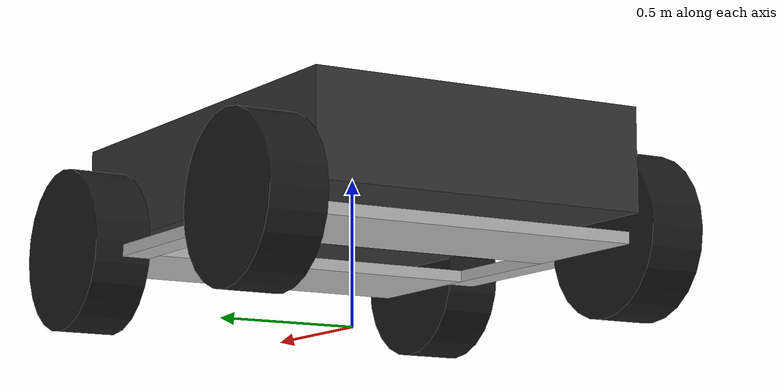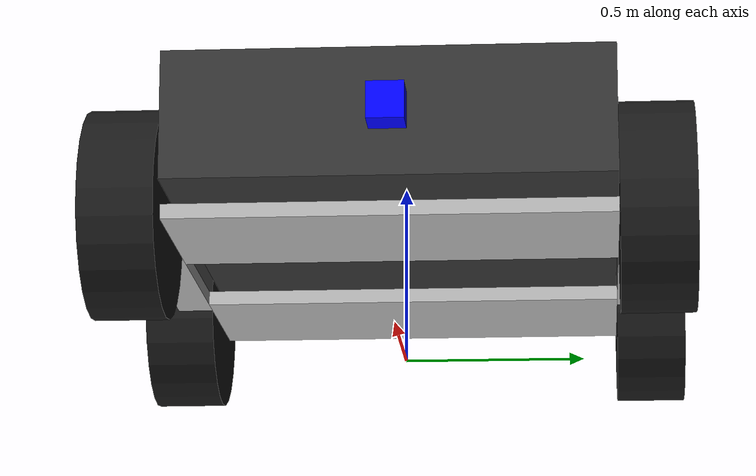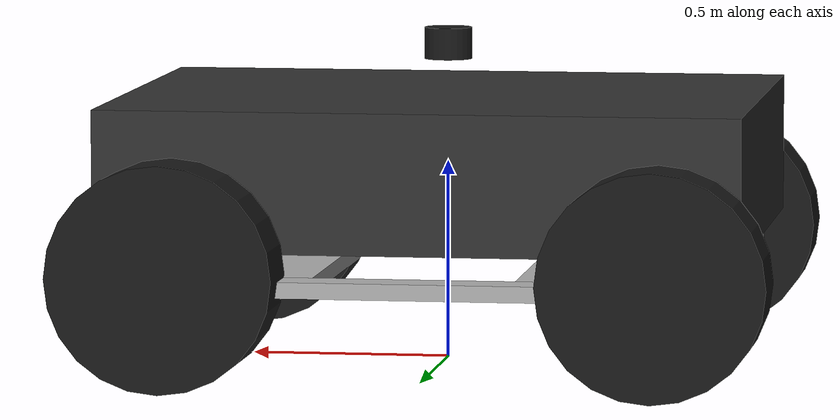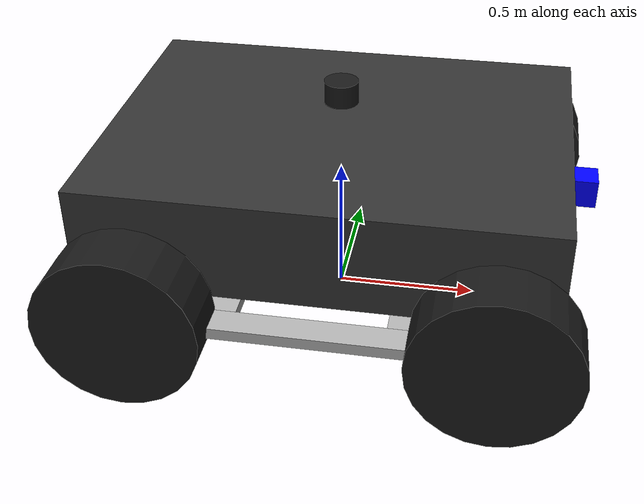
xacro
<?xml version="1.0" ?>
<robot name="bot" xmlns:xacro="http://ros.org/wiki/xacro">

  <xacro:include filename="bot_ros2_control.xacro" />

  <link name="base_footprint">
  </link>

  <joint name="base_joint" type="fixed">
    <parent link="base_footprint"/>
    <child link="base_link"/>
    <origin xyz="0.0 0.0 0.50" rpy="0.0 0.0 3.14159"/>
  </joint>

  <link name="base_link">
    <visual>
      <geometry>
        <box size="1.6 1.2 0.35"/>
      </geometry>
      <material name="gray">
        <color rgba="0.2 0.2 0.2 1" />
      </material>
    </visual>

    <collision>
      <geometry>
        <box size="1.6 1.2 0.35"/>
      </geometry>
    </collision>

    <inertial>
      <mass value="80"/>
      <inertia ixx="15.0" iyy="22.0" izz="35.0" ixy="0.0" ixz="0.0" iyz="0.0"/>
    </inertial>
  </link>

  <gazebo reference="base_link">
    <material>Gazebo/DarkGrey</material>
  </gazebo>

  <link name="wheel_front_right">
    <inertial>
      <mass value="8.0"/>
      <inertia ixx="0.18" iyy="0.18" izz="0.32" ixy="0.0" ixz="0.0" iyz="0.0"/>
    </inertial>

    <visual>
      <geometry>
        <cylinder radius="0.28" length="0.20"/>
      </geometry>
      <material name="black">
        <color rgba="0.1 0.1 0.1 1"/>
      </material>
    </visual>

    <collision>
      <geometry>
        <cylinder radius="0.28" length="0.20"/>
      </geometry>
    </collision>
  </link>

  <link name="wheel_front_left">
    <inertial>
      <mass value="8.0"/>
      <inertia ixx="0.18" iyy="0.18" izz="0.32" ixy="0.0" ixz="0.0" iyz="0.0"/>
    </inertial>

    <visual>
      <geometry>
        <cylinder radius="0.28" length="0.20"/>
      </geometry>
      <material name="black">
        <color rgba="0.1 0.1 0.1 1"/>
      </material>
    </visual>

    <collision>
      <geometry>
        <cylinder radius="0.28" length="0.20"/>
      </geometry>
    </collision>
  </link>

  <link name="wheel_back_right">
    <inertial>
      <mass value="8.0"/>
      <inertia ixx="0.18" iyy="0.18" izz="0.32" ixy="0.0" ixz="0.0" iyz="0.0"/>
    </inertial>

    <visual>
      <geometry>
        <cylinder radius="0.28" length="0.20"/>
      </geometry>
      <material name="black">
        <color rgba="0.1 0.1 0.1 1"/>
      </material>
    </visual>

    <collision>
      <geometry>
        <cylinder radius="0.28" length="0.20"/>
      </geometry>
    </collision>
  </link>

  <link name="wheel_back_left">
    <inertial>
      <mass value="8.0"/>
      <inertia ixx="0.18" iyy="0.18" izz="0.32" ixy="0.0" ixz="0.0" iyz="0.0"/>
    </inertial>

    <visual>
      <geometry>
        <cylinder radius="0.28" length="0.20"/>
      </geometry>
      <material name="black">
        <color rgba="0.1 0.1 0.1 1"/>
      </material>
    </visual>

    <collision>
      <geometry>
        <cylinder radius="0.28" length="0.20"/>
      </geometry>
    </collision>
  </link>

  <gazebo reference="wheel_front_right">
    <mu1>2.0</mu1>
    <mu2>1.8</mu2>
    <kp>200000.0</kp>
    <kd>20.0</kd>
    <minDepth>0.001</minDepth>
    <maxVel>1</maxVel>
    <fdir1>1 0 0</fdir1>
    <material>Gazebo/Black</material>
  </gazebo>

  <gazebo reference="wheel_front_left">
    <mu1>2.0</mu1>
    <mu2>1.8</mu2>
    <kp>200000.0</kp>
    <kd>20.0</kd>
    <minDepth>0.001</minDepth>
    <maxVel>1</maxVel>
    <fdir1>1 0 0</fdir1>
    <material>Gazebo/Black</material>
  </gazebo>

  <gazebo reference="wheel_back_right">
    <mu1>2.0</mu1>
    <mu2>1.8</mu2>
    <kp>200000.0</kp>
    <kd>20.0</kd>
    <minDepth>0.001</minDepth>
    <maxVel>1</maxVel>
    <fdir1>1 0 0</fdir1>
    <material>Gazebo/Black</material>
  </gazebo>

  <gazebo reference="wheel_back_left">
    <mu1>2.0</mu1>
    <mu2>1.8</mu2>
    <kp>200000.0</kp>
    <kd>20.0</kd>
    <minDepth>0.001</minDepth>
    <maxVel>1</maxVel>
    <fdir1>1 0 0</fdir1>
    <material>Gazebo/Black</material>
  </gazebo>

  <link name="rgb_camera">
    <inertial>
      <mass value="0.05" />
      <inertia ixx="0.01" ixy="0.0" ixz="0"
      iyy="0.01" iyz="0" izz="0.01" />
    </inertial>

    <visual>
      <geometry>
        <box size="0.1 0.1 0.1"/>
      </geometry>
      <material name="blue">
        <color rgba="0 0 1 1"/>
      </material>
    </visual>
    <origin xyz="-0.35 0 0.15" rpy="0 0.0 3.14"/>

    <collision>
      <geometry>
        <box size="0.1 0.1 0.1"/>
      </geometry>
    </collision>
  </link>

  <gazebo reference="rgb_camera">
    <material>Gazebo/Blue</material>
    <sensor type="camera" name="camera">
      <always_on>1</always_on>
      <update_rate>20</update_rate>
      <visualize>true</visualize>
      <camera>
        <horizontal_fov>1.3962634</horizontal_fov>
        <image>
          <width>640</width>
          <height>480</height>
          <format>R8G8B8</format>
        </image>
        <clip>
          <near>0.1</near>
          <far>15</far>
        </clip>
        <noise>
          <type>gaussian</type>
          <mean>0.0</mean>
          <stddev>0.007</stddev>
        </noise>
      </camera>
    <plugin name="ugv_camera_controller" filename="libgazebo_ros_camera.so">
      <ros>
        <namespace>/</namespace>
        <remapping>image_raw:=/ugv_camera/image_raw</remapping>
        <remapping>camera_info:=/ugv_camera/camera_info</remapping>
      </ros>
      <camera_name>rgb_camera</camera_name>
      <frame_name>camera_link_optical</frame_name>
    </plugin>
    </sensor>
  </gazebo>

  <joint name="camera_joint" type="fixed">
    <origin xyz="-0.85 0 0.0" rpy="0 0.0 3.14"/>
    <parent link="base_link"/>
    <child link="rgb_camera"/>
    <axis xyz="0.0 0 0"/>
  </joint>

  <joint type="fixed" name="camera_optical_joint">
    <origin xyz="0 0 0" rpy="-1.5707 0 -1.5707"/>
    <child link="camera_link_optical"/>
    <parent link="rgb_camera"/>
  </joint>

  <link name="camera_link_optical">
  </link>

  <link name="laser_link">
    <inertial>
      <mass value="0.3" />
      <inertia ixx="0.008" ixy="0.0" ixz="0"
      iyy="0.008" iyz="0" izz="0.012" />
    </inertial>

    <visual>
      <geometry>
        <cylinder radius="0.06" length="0.08"/>
      </geometry>
      <material name="lidar_black">
        <color rgba="0.1 0.1 0.1 1"/>
      </material>
    </visual>

    <collision>
      <geometry>
        <cylinder radius="0.06" length="0.08"/>
      </geometry>
    </collision>
  </link>

  <joint name="laser_joint" type="continuous">
    <origin xyz="0 0 0.3" rpy="0 0.0 0"/>
    <parent link="base_link"/>
    <child link="laser_link"/>
    <axis xyz="0.0 0.0 1.0"/>
    <dynamics damping="0.1" friction="0.1"/>
  </joint>

  <gazebo reference="laser_link">
    <material>Gazebo/Black</material>
        <sensor name="laser" type="ray">
            <pose> 0 0 0 0 0 0 </pose>
            <visualize>false</visualize>
            <update_rate>10</update_rate>
            <ray>
                <scan>
                    <horizontal>
                        <samples>360</samples>
                        <min_angle>-3.14</min_angle>
                        <max_angle>3.14</max_angle>
                    </horizontal>
                </scan>
                <range>
                    <min>0.3</min>
                    <max>12</max>
                </range>
            </ray>
            <plugin name="laser_controller" filename="libgazebo_ros_ray_sensor.so">
                <ros>
                    <argument>~/out:=scan</argument>
                </ros>
                <output_type>sensor_msgs/LaserScan</output_type>
                <frame_name>laser_link</frame_name>
            </plugin>
        </sensor>
  </gazebo>

  <link name="navsat_link">
  </link>

  <joint name="navsat_joint" type="fixed">
    <origin xyz="0 0 0" rpy="0 0 0" />
    <parent link="base_link"/>
    <child link="navsat_link" />
  </joint>

  <link name="imu_link">
  </link>

  <joint name="imu_joint" type="fixed">
    <origin xyz="0 0 0" rpy="0 0 0" />
    <parent link="base_link"/>
    <child link="imu_link" />
  </joint>

<gazebo reference="imu_link">
  <sensor type="imu" name="imu_sensor">
    <always_on>1</always_on>
    <update_rate>100</update_rate>
    <visualize>true</visualize>
    <plugin name="imu_plugin" filename="libgazebo_ros_imu_sensor.so">
      <ros>
        <namespace>/</namespace>
        <remapping>imu:=/imu</remapping>
      </ros>
      <frame_name>imu_link</frame_name>
    </plugin>
  </sensor>
</gazebo>

  <gazebo reference="navsat_link">
    <sensor name="navsat" type="navsat">
      <always_on>1</always_on>
      <update_rate>1</update_rate>
      <topic>navsat</topic>
      <gz_frame_id>navsat_link</gz_frame_id>
    </sensor>
  </gazebo>

  <joint name="wheel_front_right_joint" type="continuous">
    <origin xyz="-0.60 0.70 -0.22" rpy="1.57 0.0 0.0"/>
    <parent link="base_link"/>
    <child link="wheel_front_right"/>
    <axis xyz="0.0 0.0 1.0"/>
  </joint>

  <joint name="wheel_front_left_joint" type="continuous">
    <origin xyz="-0.60 -0.70 -0.22" rpy="1.57 0.0 0.0"/>
    <parent link="base_link"/>
    <child link="wheel_front_left"/>
    <axis xyz="0.0 0.0 1.0"/>
  </joint>

  <joint name="wheel_back_right_joint" type="continuous">
    <origin xyz="0.60 0.70 -0.22" rpy="1.57 0.0 0.0"/>
    <parent link="base_link"/>
    <child link="wheel_back_right"/>
    <axis xyz="0.0 0.0 1.0"/>
  </joint>

  <joint name="wheel_back_left_joint" type="continuous">
    <origin xyz="0.60 -0.70 -0.22" rpy="1.57 0.0 0.0"/>
    <parent link="base_link"/>
    <child link="wheel_back_left"/>
    <axis xyz="0.0 0.0 1.0"/>
  </joint>

  <link name="front_skid_plate">
    <inertial>
      <mass value="2.0"/>
      <inertia ixx="0.05" iyy="0.05" izz="0.05" ixy="0.0" ixz="0.0" iyz="0.0"/>
    </inertial>
    <visual>
      <geometry>
        <box size="0.5 1.2 0.04"/>
      </geometry>
      <material name="steel">
        <color rgba="0.7 0.7 0.7 1"/>
      </material>
    </visual>
    <collision>
      <geometry>
        <box size="0.5 1.2 0.04"/>
      </geometry>
    </collision>
  </link>

  <joint name="front_skid_joint" type="fixed">
    <origin xyz="-0.5 0 -0.25" rpy="0 0 0"/>
    <parent link="base_link"/>
    <child link="front_skid_plate"/>
  </joint>

  <link name="rear_skid_plate">
    <inertial>
      <mass value="2.0"/>
      <inertia ixx="0.05" iyy="0.05" izz="0.05" ixy="0.0" ixz="0.0" iyz="0.0"/>
    </inertial>
    <visual>
      <geometry>
        <box size="0.5 1.2 0.04"/>
      </geometry>
      <material name="steel">
        <color rgba="0.7 0.7 0.7 1"/>
      </material>
    </visual>
    <collision>
      <geometry>
        <box size="0.5 1.2 0.04"/>
      </geometry>
    </collision>
  </link>

  <joint name="rear_skid_joint" type="fixed">
    <origin xyz="0.5 0 -0.25" rpy="0 0 0"/>
    <parent link="base_link"/>
    <child link="rear_skid_plate"/>
  </joint>

  <link name="left_skid_plate">
    <inertial>
      <mass value="1.5"/>
      <inertia ixx="0.03" iyy="0.03" izz="0.03" ixy="0.0" ixz="0.0" iyz="0.0"/>
    </inertial>
    <visual>
      <geometry>
        <box size="1.6 0.1 0.04"/>
      </geometry>
      <material name="steel">
        <color rgba="0.7 0.7 0.7 1"/>
      </material>
    </visual>
    <collision>
      <geometry>
        <box size="1.6 0.1 0.04"/>
      </geometry>
    </collision>
  </link>

  <joint name="left_skid_joint" type="fixed">
    <origin xyz="0 0.65 -0.25" rpy="0 0 0"/>
    <parent link="base_link"/>
    <child link="left_skid_plate"/>
  </joint>

  <link name="right_skid_plate">
    <inertial>
      <mass value="1.5"/>
      <inertia ixx="0.03" iyy="0.03" izz="0.03" ixy="0.0" ixz="0.0" iyz="0.0"/>
    </inertial>
    <visual>
      <geometry>
        <box size="1.6 0.1 0.04"/>
      </geometry>
      <material name="steel">
        <color rgba="0.7 0.7 0.7 1"/>
      </material>
    </visual>
    <collision>
      <geometry>
        <box size="1.6 0.1 0.04"/>
      </geometry>
    </collision>
  </link>

  <joint name="right_skid_joint" type="fixed">
    <origin xyz="0 -0.65 -0.25" rpy="0 0 0"/>
    <parent link="base_link"/>
    <child link="right_skid_plate"/>
  </joint>

  <gazebo reference="front_skid_plate">
    <mu1>0.4</mu1>
    <mu2>0.4</mu2>
    <material>Gazebo/Grey</material>
  </gazebo>

  <gazebo reference="rear_skid_plate">
    <mu1>0.4</mu1>
    <mu2>0.4</mu2>
    <material>Gazebo/Grey</material>
  </gazebo>

  <gazebo reference="left_skid_plate">
    <mu1>0.4</mu1>
    <mu2>0.4</mu2>
    <material>Gazebo/Grey</material>
  </gazebo>

  <gazebo reference="right_skid_plate">
    <mu1>0.4</mu1>
    <mu2>0.4</mu2>
    <material>Gazebo/Grey</material>
  </gazebo>

</robot>
